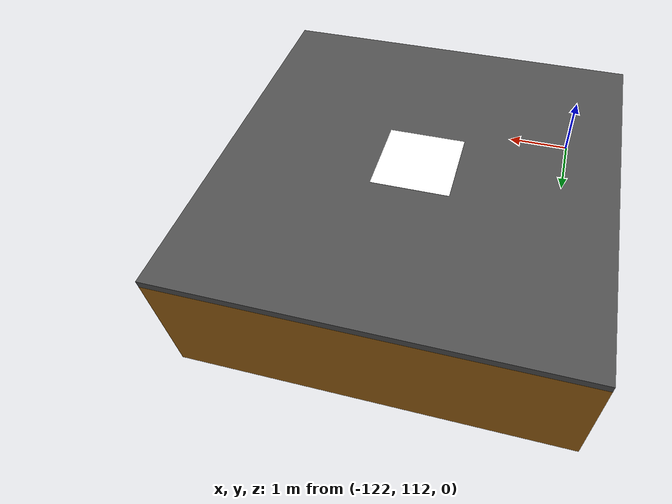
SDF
<sdf version="1.9">
 <world name="city_map_mission">
  <magnetic_field>6e-06 2.3e-05 -4.2e-05</magnetic_field>
  <atmosphere type="adiabatic"/>
  <plugin filename="gz-sim-physics-system" name="gz::sim::systems::Physics"/>
  <plugin filename="gz-sim-user-commands-system" name="gz::sim::systems::UserCommands"/>
  <plugin filename="gz-sim-scene-broadcaster-system" name="gz::sim::systems::SceneBroadcaster"/>
  <plugin filename="gz-sim-sensors-system" name="gz::sim::systems::Sensors">
   <render_engine>ogre2</render_engine>
  </plugin>
  <plugin filename="gz-sim-imu-system" name="gz::sim::systems::Imu"/>
  <plugin filename="gz-sim-navsat-system" name="gz::sim::systems::NavSat"/>
  <plugin filename="gz-sim-air-pressure-system" name="gz::sim::systems::AirPressure"/>
  <plugin filename="gz-sim-air-speed-system" name="gz::sim::systems::AirSpeed"/>
  <plugin filename="gz-sim-magnetometer-system" name="gz::sim::systems::Magnetometer"/>
  <plugin filename="gz-sim-contact-system" name="gz::sim::systems::Contact"/>
  <plugin filename="gz-sim-apply-link-wrench-system" name="gz::sim::systems::ApplyLinkWrench"/>
  <plugin filename="libOpticalFlowSystem.so" name="custom::OpticalFlowSystem"/>
  <plugin filename="libGstCameraSystem.so" name="custom::GstCameraSystem"/>
  <light type="directional" name="sun">
   <pose>0 -7000 7000 0 0 0</pose>
   <diffuse>0.9 0.88 0.82 1</diffuse>
   <specular>0 0 0 1</specular>
   <direction>0.0 0.6 -0.6</direction>
  </light>
  <scene>
   <ambient>0.45 0.48 0.55 1</ambient>
   <grid>false</grid>
   <origin_visual>false</origin_visual>
   <sky><time>10</time><sunrise>6</sunrise><sunset>20</sunset><clouds><speed>12</speed></clouds></sky>
  </scene>
  <physics name="2ms" type="ignored">
   <max_step_size>0.002</max_step_size>
   <real_time_factor>1</real_time_factor>
   <real_time_update_rate>500</real_time_update_rate>
  </physics>
  <gravity>0 0 -9.8066</gravity>
  <spherical_coordinates>
   <surface_model>EARTH_WGS84</surface_model>
   <latitude_deg>37.32977431415926</latitude_deg>
   <longitude_deg>-121.99860517699835</longitude_deg>
   <elevation>50.600000000000364</elevation>
  </spherical_coordinates>
  <model name="city_buildings">
   <static>true</static>
   <link name="buildings">
    <visual name="buildings_visual">
     <geometry><mesh><uri>mesh/buildings.dae</uri><scale>1 1 1</scale></mesh></geometry>
     <material>
      <ambient>0.75 0.75 0.75 1</ambient>
      <diffuse>0.85 0.85 0.85 1</diffuse>
      <specular>0.05 0.05 0.05 1</specular>
      <emissive>0 0 0 1</emissive>
     </material>
    </visual>
    <collision name="buildings_collision">
     <geometry><mesh><uri>mesh/buildings.dae</uri><scale>1 1 1</scale></mesh></geometry>
    </collision>
   </link>
  </model>
  <frame name="drone_spawn"><pose>-120 115 0 0 0 0</pose></frame>
  <include><uri>model://moving_platform_aruco_route</uri><pose>-120 115 0 0 0 0</pose></include>
 </world>
</sdf>

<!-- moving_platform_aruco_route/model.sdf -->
<sdf version="1.9">
  <model name="flat_platform">
    <link name="platform_link">
      <visual name="body_visual">
        <pose>0 0 -0.85 0 0 0</pose>
        <geometry>
          <box>
            <size>5 5 1.6</size>
          </box>
        </geometry>
        <material>
          <ambient>0.55 0.32 0.05 1</ambient>
          <diffuse>0.6 0.38 0.08 1</diffuse>
          <specular>0.2 0.2 0.2 1</specular>
        </material>
      </visual>
      <collision name="body_collision">
        <pose>0 0 -0.875 0 0 0</pose>
        <geometry>
          <box>
            <size>5 5 1.65</size>
          </box>
        </geometry>
      </collision>
      <visual name="platform_visual">
        <geometry>
          <box>
            <size>5 5 0.1</size>
          </box>
        </geometry>
        <material>
          <ambient>0.3 0.3 0.3 1</ambient>
          <diffuse>0.3 0.3 0.3 1</diffuse>
          <specular>0.1 0.1 0.1 1</specular>
        </material>
      </visual>
      <!-- ArUco decal on the top face, centred, well clear of the 5x5 edges.
           Same asset/geometry as moving_platform_aruco. -->
      <visual name="aruco_visual">
        <pose>0 0 0.051 0 0 0</pose>
        <geometry>
          <plane>
            <normal>0 0 1</normal>
            <size>1.0 1.0</size>
          </plane>
        </geometry>
        <material>
          <diffuse>1 1 1 1</diffuse>
          <specular>0.4 0.4 0.4 1</specular>
          <pbr>
            <metal>
              <albedo_map>model://moving_platform_aruco_route/arucotag.png</albedo_map>
            </metal>
          </pbr>
        </material>
      </visual>
      <collision name="platform_collision">
        <geometry>
          <box>
            <size>5 5 0.1</size>
          </box>
        </geometry>
      </collision>
      <pose>0 0 2 0 0 0</pose>
      <inertial>
          <mass>10000</mass>
          <inertia>
              <ixx>23841.67</ixx>
              <iyy>23841.67</iyy>
              <izz>41666.67</izz>
          </inertia>
      </inertial>
      <sensor name="navsat_sensor" type="navsat">
        <always_on>1</always_on>
        <update_rate>30</update_rate>
      </sensor>
    </link>
    <!-- Driven by an external cmd_vel (moving_marker_node, pattern='route'),
         not MovingPlatformController, see the link comment above. -->
    <plugin filename="gz-sim-velocity-control-system"
            name="gz::sim::systems::VelocityControl">
      <topic>/model/flat_platform/cmd_vel</topic>
    </plugin>
  </model>
</sdf>
